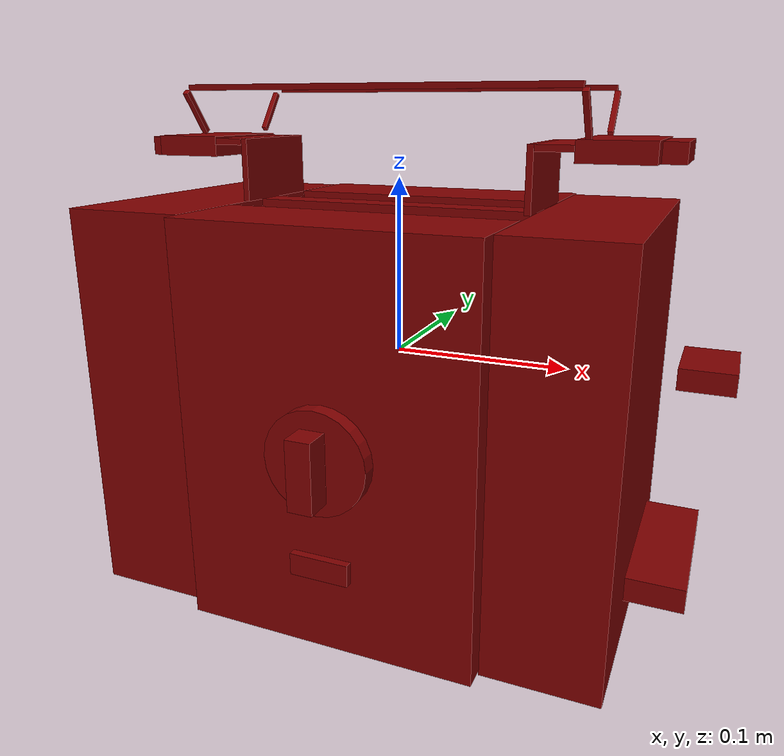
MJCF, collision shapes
<?xml version='1.0' encoding='UTF-8'?>
<mujoco model="model">
  <option timestep="0.002" gravity="0.0 0.0 -9.81"/>
  <compiler angle="radian"/>
  <asset>
    <mesh file="visuals/button_cancel.obj" name="button_cancel_vis"/>
    <mesh file="visuals/knob_doneness.obj" name="knob_doneness_vis"/>
    <mesh file="visuals/lever.obj" name="lever_vis"/>
    <mesh file="visuals/Body001.obj" name="Body001_vis"/>
    <mesh file="visuals/Body002.obj" name="Body002_vis"/>
    <texture file="visuals/T_BC001.png" name="Body001_material" type="2d"/>
    <material name="Body001_material" rgba="1 1 1 1.0" texture="Body001_material" shininess="0.141421377658844" specular="1"/>
    <texture file="visuals/T_BC001.png" name="button_cancel_material" type="2d"/>
    <material name="button_cancel_material" rgba="1 1 1 1.0" texture="button_cancel_material" shininess="0.141421377658844" specular="1"/>
    <texture file="visuals/T_BC001.png" name="knob_doneness_material" type="2d"/>
    <material name="knob_doneness_material" rgba="1 1 1 1.0" texture="knob_doneness_material" shininess="0.141421377658844" specular="1"/>
    <texture file="visuals/T_BC001.png" name="lever_material" type="2d"/>
    <material name="lever_material" rgba="1 1 1 1.0" texture="lever_material" shininess="0.141421377658844" specular="1"/>
    <texture file="visuals/T_BC001.png" name="Body002_material" type="2d"/>
    <material name="Body002_material" rgba="1 1 1 1.0" texture="Body002_material" shininess="0.141421377658844" specular="3"/>
  </asset>
  <default>
    <default class="visual">
      <geom conaffinity="0" contype="0" group="1" type="mesh"/>
    </default>
    <default class="collision_1">
      <geom group="0" rgba="0.5 0 0 0.5" solref="0.004 1" solimp="0.998 0.998 0.001"/>
    </default>
    <default class="collision_2">
      <geom group="0" rgba="0.5 0 0 0.5" solref="0.004 1" solimp="0.998 0.998 0.001"/>
    </default>
    <default class="collision_3">
      <geom group="0" rgba="0.5 0 0 0.5" solref="0.004 1" solimp="0.998 0.998 0.001"/>
    </default>
    <default class="collision_4">
      <geom group="0" rgba="0.5 0 0 0.5" solref="0.004 1" solimp="0.998 0.998 0.001"/>
    </default>
    <default class="collision_5">
      <geom group="0" rgba="0.5 0 0 0.5" solref="0.004 1" solimp="0.998 0.998 0.001"/>
    </default>
    <default class="spawn">
      <geom group="0" rgba="1 1 1 0.5" contype="0" conaffinity="0"/>
      <site group="0" rgba="1 1 1 0.5"/>
    </default>
    <default class="region">
      <geom group="1" conaffinity="0" contype="0" rgba="0 1 0 0" mass="0"/>
    </default>
  </default>
  <worldbody>
    <body>
      <body name="object">
        <geom mesh="Body001_vis" type="mesh" solimp="0.998 0.998 0.001" solref="0.001 1" friction="0.95 0.3 0.1" class="visual" material="Body001_material"/>
        <geom type="box" pos="-0.00790040 0.08430197 -0.03294333" size="0.08576202392578125 0.02806827612221241 0.11694221943616867" quat="1.0 0.0 0.0 0.0" class="collision_1"/>
        <geom type="box" pos="-0.00790041 -0.05864935 -0.03294333" size="0.08576203137636185 0.029883073642849922 0.11694221943616867" quat="1.0 0.0 0.0 0.0" class="collision_1"/>
        <geom type="box" pos="-0.13084483 0.01272480 -0.03294333" size="0.03641093149781227 0.09091868251562119 0.11694221943616867" quat="1.0 0.0 0.0 0.0" class="collision_1"/>
        <geom type="box" pos="0.11108507 0.01272480 -0.03294333" size="0.03222068026661873 0.09091868251562119 0.11694221943616867" quat="1.0 0.0 0.0 0.0" class="collision_1"/>
        <geom type="box" pos="0.16021535 0.01129799 -0.10628906" size="0.015537276864051819 0.04710166156291962 0.006863318383693695" quat="1.0 0.0 0.0 0.0" class="collision_1"/>
        <geom type="box" pos="-0.16993284 0.01129799 -0.10628906" size="0.015537291765213013 0.047101691365242004 0.0068633221089839935" quat="1.0 0.0 0.0 0.0" class="collision_1"/>
        <body name="button_cancel">
          <joint axis="0.0 1.0 0.0" pos="-0.00576892 -0.09318305 -0.09730080" limited="true" name="button_cancel_joint" range="0.0 0.003" type="slide" damping="1" frictionloss="1" armature=".01" stiffness="4" springref="-1"/>
          <geom mesh="button_cancel_vis" type="mesh" solimp="0.998 0.998 0.001" solref="0.001 1" friction="0.95 0.3 0.1" class="visual" material="button_cancel_material"/>
          <geom class="collision_2" type="box" pos="-0.00625277 -0.09351206 -0.09719739" size="0.017054395750164986 0.002297984668985009 0.006246058735996485" quat="1.0 0.0 0.0 0.0" name="button_cancel_main"/>
        </body>
        <body name="knob_doneness">
          <joint axis="0.0 1.0 0.0" pos="-0.00531974 -0.10016712 -0.03459022" limited="true" name="knob_doneness_joint" range="0.0 5.410520681182422" type="hinge" damping="0.05" armature="1" frictionloss="0.75"/>
          <geom mesh="knob_doneness_vis" type="mesh" solimp="0.998 0.998 0.001" solref="0.001 1" friction="0.95 0.3 0.1" class="visual" material="knob_doneness_material"/>
          <geom type="cylinder" pos="-0.00518199 -0.09416743 -0.03439527" size="0.029119739308953285 0.0044754380360245705" quat="0.7071069478988647 0.7071065902709961 0.0 0.0" class="collision_3" friction="100 0.5 0.01"/>
          <geom class="collision_3" type="box" pos="-0.00549280 -0.10502709 -0.03551902" size="0.007064640522003174 0.008776905946433544 0.019527321681380272" quat="1.0 0.0 0.0 0.0" name="knob_doneness_main" friction="100 0.5 0.01"/>
        </body>
        <body name="lever">
          <joint axis="0.0 0.0 -1.0" pos="0.16565856 0.01275221 0.00484495" limited="true" name="lever_joint" range="0.0 0.06" type="slide" damping="1" frictionloss="1" armature=".1" stiffness="2" springref="-0.5"/>
          <geom class="region" name="reg_slotL" type="box" pos="-0.005441805000000001 -0.01074658 0.086108415" size="0.07883916499999999 0.01391823 0.076000075"/>
          <geom class="region" name="reg_slotR" type="box" pos="-0.005441805000000001 0.037538195 0.086108415" size="0.07883916499999999 0.014395325 0.076000075"/>
          <geom mesh="lever_vis" type="mesh" solimp="0.998 0.998 0.001" solref="0.001 1" friction="0.95 0.3 0.1" class="visual" material="lever_material"/>
          <geom class="collision_4" type="box" pos="-0.00595541 0.03763614 0.00596276" size="0.07907406240701675 0.014000008814036846 0.0005065289442427456" quat="1.0 0.0 0.0 0.0" name="slotR_floor"/>
          <geom class="collision_4" type="box" pos="-0.00595541 -0.01125852 0.00596276" size="0.07907406240701675 0.013999992981553078 0.000506528711412102" quat="1.0 0.0 0.0 0.0" name="slotL_floor"/>
          <geom class="collision_4" type="box" pos="0.17301887 0.01268643 0.00479666" size="0.014526644721627235 0.021635927259922028 0.0059326267801225185" quat="1.0 0.0 0.0 0.0" name="lever_handle"/>
        </body>
        <body name="Body002">
          <geom mesh="Body002_vis" type="mesh" solimp="0.998 0.998 0.001" solref="0.001 1" friction="0.95 0.3 0.1" class="visual" material="Body002_material"/>
          <geom type="box" pos="-0.00790040 0.01392756 -0.03294333" size="0.08576202392578125 0.008868694305419922 0.11694221943616867" quat="1.0 0.0 0.0 0.0" class="collision_5"/>
          <geom type="box" pos="0.07871711 0.01341111 0.10280737" size="0.001743199536576867 0.03209192678332329 0.017710207030177116" quat="1.0 0.0 0.0 0.0" class="collision_5"/>
          <geom type="box" pos="0.09065193 0.01341111 0.11878926" size="0.010049453936517239 0.03209192678332329 0.0017431998858228326" quat="1.0 0.0 0.0 0.0" class="collision_5"/>
          <geom type="box" pos="0.12062187 0.01341111 0.11741543" size="0.019743118435144424 0.03209192678332329 0.005702401977032423" quat="1.0 0.0 0.0 0.0" class="collision_5"/>
          <geom type="box" pos="0.14688388 0.01341111 0.11709318" size="0.0060719153843820095 0.022055963054299355 0.005380160640925169" quat="1.0 0.0 0.0 0.0" class="collision_5"/>
          <geom type="box" pos="-0.08935362 0.01341111 0.10280737" size="0.001743199536576867 0.03209192678332329 0.017710207030177116" quat="1.0 0.0 0.0 0.0" class="collision_5"/>
          <geom type="box" pos="-0.09996318 0.01341111 0.11878926" size="0.008588558994233608 0.03209192678332329 0.001743199652992189" quat="1.0 0.0 0.0 0.0" class="collision_5"/>
          <geom type="box" pos="-0.12863833 0.01341111 0.11581847" size="0.019743118435144424 0.03209192678332329 0.005702401977032423" quat="1.0 0.0 0.0 0.0" class="collision_5"/>
          <geom type="box" pos="-0.15524697 0.01341111 0.11501712" size="0.0060719153843820095 0.022055963054299355 0.005380160640925169" quat="1.0 0.0 0.0 0.0" class="collision_5"/>
          <geom type="box" pos="-0.00198242 -0.03536156 0.14825219" size="0.10886382311582565 0.0015534975100308657 0.0015460416907444596" quat="1.0 0.0 0.0 0.0" class="collision_5"/>
          <geom type="box" pos="-0.00198242 0.06324761 0.14825219" size="0.10886382311582565 0.0015534975100308657 0.0015460416907444596" quat="1.0 0.0 0.0 0.0" class="collision_5"/>
          <geom type="box" pos="0.10729261 0.05375826 0.13497731" size="0.01359183806926012 0.0015534976264461875 0.0015460456488654017" quat="0.6703130602836609 -0.22512316703796387 0.6703130006790161 -0.22512316703796387" class="collision_5"/>
          <geom type="box" pos="0.10729261 -0.02580039 0.13507813" size="0.01359183806926012 0.0015534976264461875 0.0015460456488654017" quat="0.22041332721710205 -0.6718761324882507 0.2204151451587677 -0.6718761920928955" class="collision_5"/>
          <geom type="box" pos="-0.11511932 0.05375826 0.13497731" size="0.01359183806926012 0.0015534976264461875 0.0015460456488654017" quat="0.6703130602836609 -0.22512316703796387 0.6703130006790161 -0.22512316703796387" class="collision_5"/>
          <geom type="box" pos="-0.11511932 -0.02580039 0.13507813" size="0.01359183806926012 0.0015534976264461875 0.0015460456488654017" quat="0.22041332721710205 -0.6718761324882507 0.2204151451587677 -0.6718761920928955" class="collision_5"/>
          <geom type="box" pos="-0.00790040 0.01206642 -0.10902926" size="0.08576202392578125 0.04851778224110603 0.04003110155463219" quat="1.0 0.0 0.0 0.0" class="collision_5"/>
        </body>
        <geom class="region" name="reg_main" type="box" pos="-0.004603004999999993 0.010112244999999999 0.0" size="0.184304995 0.10565550500000001 0.15088554"/>
      </body>
    </body>
  </worldbody>
  <actuator>
    <motor name="button_cancel_joint_actuator" joint="button_cancel_joint" gear="0.5"/>
    <motor name="knob_doneness_joint_actuator" joint="knob_doneness_joint" gear="10"/>
    <motor name="lever_joint_actuator" joint="lever_joint" gear="2"/>
  </actuator>
</mujoco>
